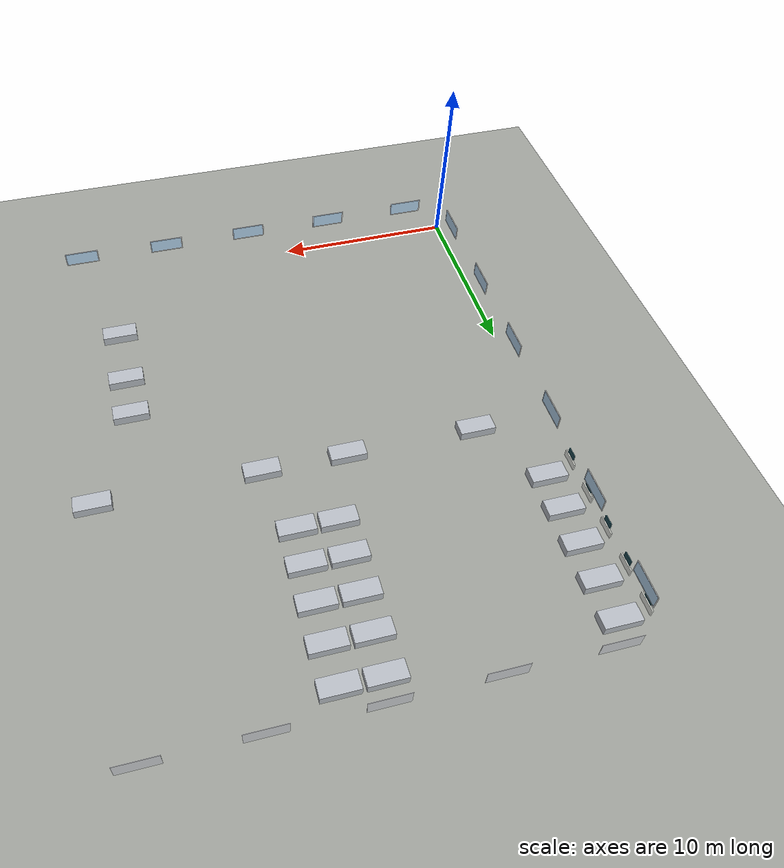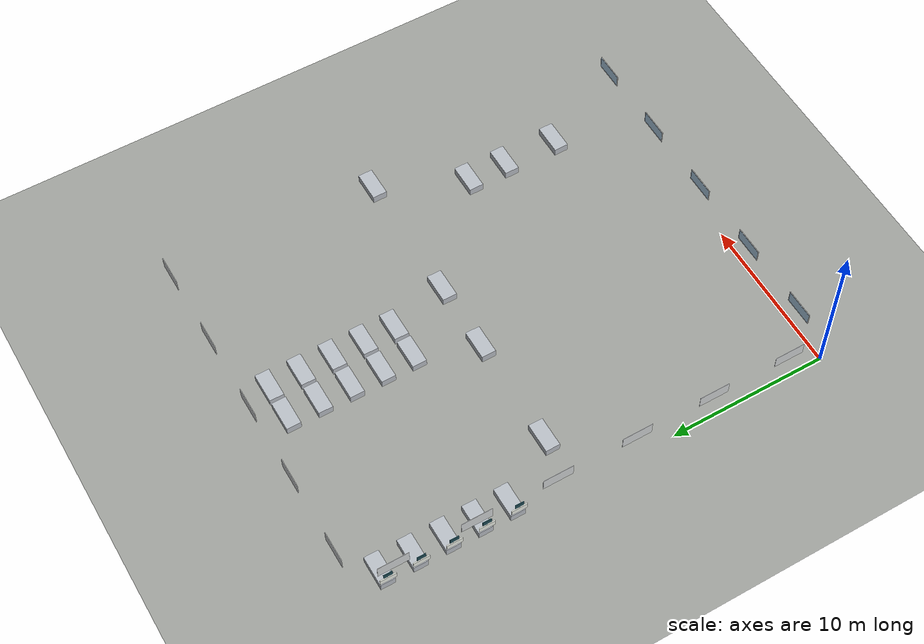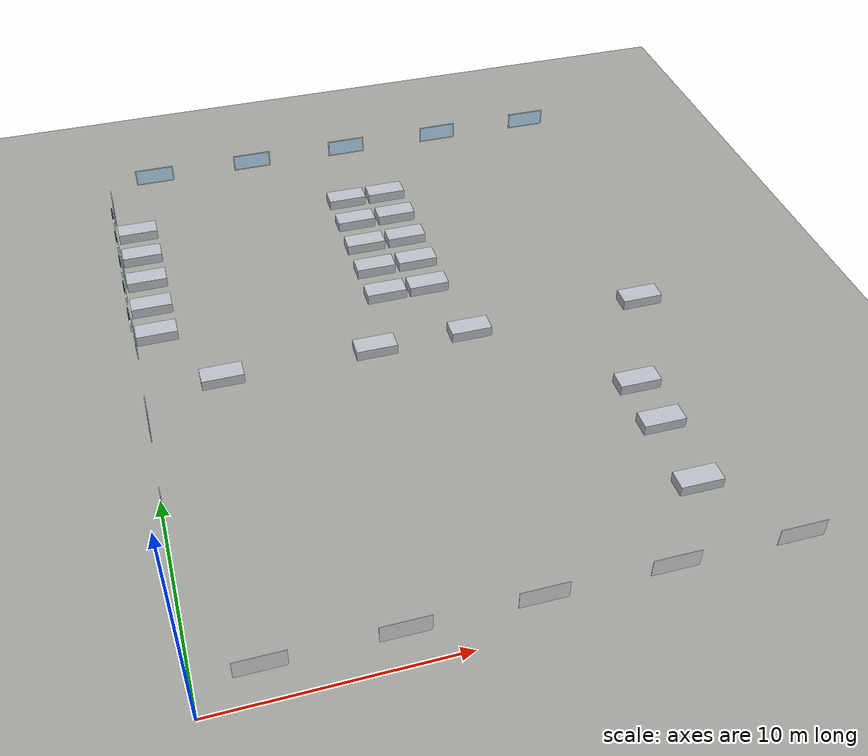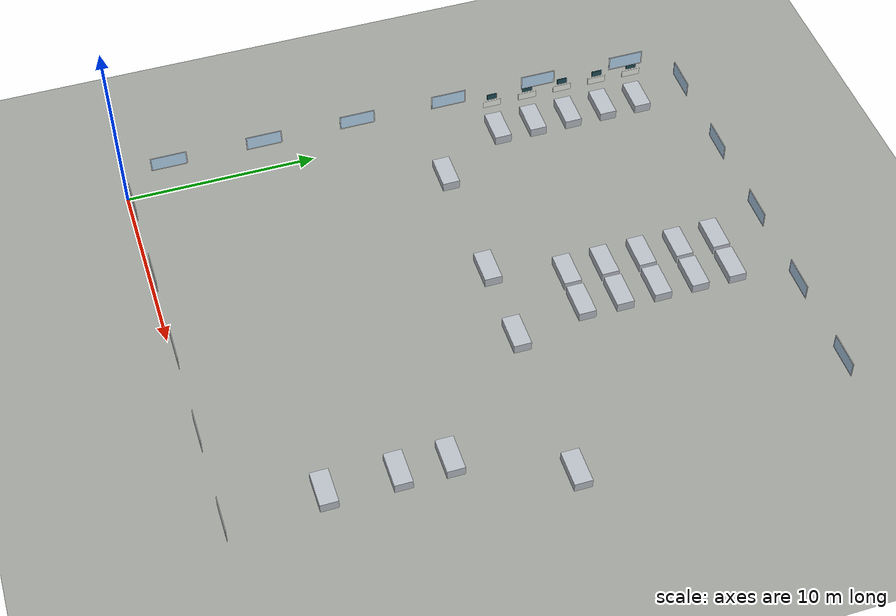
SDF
<sdf version="1.9">
 <world name="hospital">
  <model name="ground_plane">
   <static>true</static>
   <link name="link">
    <collision name="collision">
     <geometry><plane><normal>0 0 1</normal><size>200 200</size></plane></geometry>
    </collision>
    <visual name="visual">
     <pose>0 0 -0.03 0 0 0</pose>
     <cast_shadows>false</cast_shadows>
     <geometry><plane><normal>0 0 1</normal><size>200 200</size></plane></geometry>
     <material>
      <ambient>0.310 0.315 0.305 1.0</ambient>
      <diffuse>0.620 0.630 0.610 1.0</diffuse>
      <specular>0.14 0.14 0.14 1</specular>
      <emissive>0.000 0.000 0.000 1</emissive>
     </material>
    </visual>
   </link>
  </model>
  <model name="bed_0">
   <static>true</static>
   <pose>1.05 20.0 0.25 0 0 0</pose>
   <link name="link">
    <collision name="c"><geometry><box><size>1.9 0.8999999999999986 0.5</size></box></geometry></collision>
    <visual name="v">
     <visibility_flags>2</visibility_flags>
     <geometry><box><size>1.9 0.8999999999999986 0.5</size></box></geometry>
     <material>
      <ambient>0.360 0.370 0.385 1.0</ambient>
      <diffuse>0.720 0.740 0.770 1.0</diffuse>
      <specular>0.14 0.14 0.14 1</specular>
      <emissive>0.000 0.000 0.000 1</emissive>
     </material>
    </visual>
   </link>
  </model>
  <model name="bed_1">
   <static>true</static>
   <pose>11.95 20.0 0.25 0 0 0</pose>
   <link name="link">
    <collision name="c">
     <geometry><box><size>1.9000000000000004 0.8999999999999986 0.5</size></box></geometry>
    </collision>
    <visual name="v">
     <visibility_flags>2</visibility_flags>
     <geometry><box><size>1.9000000000000004 0.8999999999999986 0.5</size></box></geometry>
     <material>
      <ambient>0.360 0.370 0.385 1.0</ambient>
      <diffuse>0.720 0.740 0.770 1.0</diffuse>
      <specular>0.14 0.14 0.14 1</specular>
      <emissive>0.000 0.000 0.000 1</emissive>
     </material>
    </visual>
   </link>
  </model>
  <model name="bed_2">
   <static>true</static>
   <pose>1.05 24.0 0.25 0 0 0</pose>
   <link name="link">
    <collision name="c"><geometry><box><size>1.9 0.8999999999999986 0.5</size></box></geometry></collision>
    <visual name="v">
     <visibility_flags>2</visibility_flags>
     <geometry><box><size>1.9 0.8999999999999986 0.5</size></box></geometry>
     <material>
      <ambient>0.360 0.370 0.385 1.0</ambient>
      <diffuse>0.720 0.740 0.770 1.0</diffuse>
      <specular>0.14 0.14 0.14 1</specular>
      <emissive>0.000 0.000 0.000 1</emissive>
     </material>
    </visual>
   </link>
  </model>
  <model name="bed_3">
   <static>true</static>
   <pose>11.95 24.0 0.25 0 0 0</pose>
   <link name="link">
    <collision name="c">
     <geometry><box><size>1.9000000000000004 0.8999999999999986 0.5</size></box></geometry>
    </collision>
    <visual name="v">
     <visibility_flags>2</visibility_flags>
     <geometry><box><size>1.9000000000000004 0.8999999999999986 0.5</size></box></geometry>
     <material>
      <ambient>0.360 0.370 0.385 1.0</ambient>
      <diffuse>0.720 0.740 0.770 1.0</diffuse>
      <specular>0.14 0.14 0.14 1</specular>
      <emissive>0.000 0.000 0.000 1</emissive>
     </material>
    </visual>
   </link>
  </model>
  <model name="bed_4">
   <static>true</static>
   <pose>1.05 28.0 0.25 0 0 0</pose>
   <link name="link">
    <collision name="c"><geometry><box><size>1.9 0.8999999999999986 0.5</size></box></geometry></collision>
    <visual name="v">
     <visibility_flags>2</visibility_flags>
     <geometry><box><size>1.9 0.8999999999999986 0.5</size></box></geometry>
     <material>
      <ambient>0.360 0.370 0.385 1.0</ambient>
      <diffuse>0.720 0.740 0.770 1.0</diffuse>
      <specular>0.14 0.14 0.14 1</specular>
      <emissive>0.000 0.000 0.000 1</emissive>
     </material>
    </visual>
   </link>
  </model>
  <model name="bed_5">
   <static>true</static>
   <pose>11.95 28.0 0.25 0 0 0</pose>
   <link name="link">
    <collision name="c">
     <geometry><box><size>1.9000000000000004 0.8999999999999986 0.5</size></box></geometry>
    </collision>
    <visual name="v">
     <visibility_flags>2</visibility_flags>
     <geometry><box><size>1.9000000000000004 0.8999999999999986 0.5</size></box></geometry>
     <material>
      <ambient>0.360 0.370 0.385 1.0</ambient>
      <diffuse>0.720 0.740 0.770 1.0</diffuse>
      <specular>0.14 0.14 0.14 1</specular>
      <emissive>0.000 0.000 0.000 1</emissive>
     </material>
    </visual>
   </link>
  </model>
  <model name="bed_6">
   <static>true</static>
   <pose>14.05 20.0 0.25 0 0 0</pose>
   <link name="link">
    <collision name="c">
     <geometry><box><size>1.9000000000000004 0.8999999999999986 0.5</size></box></geometry>
    </collision>
    <visual name="v">
     <visibility_flags>2</visibility_flags>
     <geometry><box><size>1.9000000000000004 0.8999999999999986 0.5</size></box></geometry>
     <material>
      <ambient>0.360 0.370 0.385 1.0</ambient>
      <diffuse>0.720 0.740 0.770 1.0</diffuse>
      <specular>0.14 0.14 0.14 1</specular>
      <emissive>0.000 0.000 0.000 1</emissive>
     </material>
    </visual>
   </link>
  </model>
  <model name="bed_8">
   <static>true</static>
   <pose>14.05 24.0 0.25 0 0 0</pose>
   <link name="link">
    <collision name="c">
     <geometry><box><size>1.9000000000000004 0.8999999999999986 0.5</size></box></geometry>
    </collision>
    <visual name="v">
     <visibility_flags>2</visibility_flags>
     <geometry><box><size>1.9000000000000004 0.8999999999999986 0.5</size></box></geometry>
     <material>
      <ambient>0.360 0.370 0.385 1.0</ambient>
      <diffuse>0.720 0.740 0.770 1.0</diffuse>
      <specular>0.14 0.14 0.14 1</specular>
      <emissive>0.000 0.000 0.000 1</emissive>
     </material>
    </visual>
   </link>
  </model>
  <model name="bed_10">
   <static>true</static>
   <pose>14.05 28.0 0.25 0 0 0</pose>
   <link name="link">
    <collision name="c">
     <geometry><box><size>1.9000000000000004 0.8999999999999986 0.5</size></box></geometry>
    </collision>
    <visual name="v">
     <visibility_flags>2</visibility_flags>
     <geometry><box><size>1.9000000000000004 0.8999999999999986 0.5</size></box></geometry>
     <material>
      <ambient>0.360 0.370 0.385 1.0</ambient>
      <diffuse>0.720 0.740 0.770 1.0</diffuse>
      <specular>0.14 0.14 0.14 1</specular>
      <emissive>0.000 0.000 0.000 1</emissive>
     </material>
    </visual>
   </link>
  </model>
  <model name="bed_18">
   <static>true</static>
   <pose>21.05 5.0 0.25 0 0 0</pose>
   <link name="link">
    <collision name="c">
     <geometry><box><size>1.8999999999999986 0.9000000000000004 0.5</size></box></geometry>
    </collision>
    <visual name="v">
     <visibility_flags>2</visibility_flags>
     <geometry><box><size>1.8999999999999986 0.9000000000000004 0.5</size></box></geometry>
     <material>
      <ambient>0.360 0.370 0.385 1.0</ambient>
      <diffuse>0.720 0.740 0.770 1.0</diffuse>
      <specular>0.14 0.14 0.14 1</specular>
      <emissive>0.000 0.000 0.000 1</emissive>
     </material>
    </visual>
   </link>
  </model>
  <model name="bed_20">
   <static>true</static>
   <pose>21.05 8.5 0.25 0 0 0</pose>
   <link name="link">
    <collision name="c">
     <geometry><box><size>1.8999999999999986 0.8999999999999986 0.5</size></box></geometry>
    </collision>
    <visual name="v">
     <visibility_flags>2</visibility_flags>
     <geometry><box><size>1.8999999999999986 0.8999999999999986 0.5</size></box></geometry>
     <material>
      <ambient>0.360 0.370 0.385 1.0</ambient>
      <diffuse>0.720 0.740 0.770 1.0</diffuse>
      <specular>0.14 0.14 0.14 1</specular>
      <emissive>0.000 0.000 0.000 1</emissive>
     </material>
    </visual>
   </link>
  </model>
  <model name="bed_26">
   <static>true</static>
   <pose>15.0 16.3 0.25 0 0 0</pose>
   <link name="link">
    <collision name="c">
     <geometry><box><size>1.8999999999999986 0.9000000000000004 0.5</size></box></geometry>
    </collision>
    <visual name="v">
     <visibility_flags>2</visibility_flags>
     <geometry><box><size>1.8999999999999986 0.9000000000000004 0.5</size></box></geometry>
     <material>
      <ambient>0.360 0.370 0.385 1.0</ambient>
      <diffuse>0.720 0.740 0.770 1.0</diffuse>
      <specular>0.14 0.14 0.14 1</specular>
      <emissive>0.000 0.000 0.000 1</emissive>
     </material>
    </visual>
   </link>
  </model>
  <model name="bed_27">
   <static>true</static>
   <pose>23.5 16.3 0.25 0 0 0</pose>
   <link name="link">
    <collision name="c">
     <geometry><box><size>1.8999999999999986 0.9000000000000004 0.5</size></box></geometry>
    </collision>
    <visual name="v">
     <visibility_flags>2</visibility_flags>
     <geometry><box><size>1.8999999999999986 0.9000000000000004 0.5</size></box></geometry>
     <material>
      <ambient>0.360 0.370 0.385 1.0</ambient>
      <diffuse>0.720 0.740 0.770 1.0</diffuse>
      <specular>0.14 0.14 0.14 1</specular>
      <emissive>0.000 0.000 0.000 1</emissive>
     </material>
    </visual>
   </link>
  </model>
  <model name="bed_28">
   <static>true</static>
   <pose>3.5 16.3 0.25 0 0 0</pose>
   <link name="link">
    <collision name="c">
     <geometry><box><size>1.9000000000000004 0.9000000000000004 0.5</size></box></geometry>
    </collision>
    <visual name="v">
     <visibility_flags>2</visibility_flags>
     <geometry><box><size>1.9000000000000004 0.9000000000000004 0.5</size></box></geometry>
     <material>
      <ambient>0.360 0.370 0.385 1.0</ambient>
      <diffuse>0.720 0.740 0.770 1.0</diffuse>
      <specular>0.14 0.14 0.14 1</specular>
      <emissive>0.000 0.000 0.000 1</emissive>
     </material>
    </visual>
   </link>
  </model>
  <model name="bed_29">
   <static>true</static>
   <pose>10.5 16.3 0.25 0 0 0</pose>
   <link name="link">
    <collision name="c">
     <geometry><box><size>1.8999999999999986 0.9000000000000004 0.5</size></box></geometry>
    </collision>
    <visual name="v">
     <visibility_flags>2</visibility_flags>
     <geometry><box><size>1.8999999999999986 0.9000000000000004 0.5</size></box></geometry>
     <material>
      <ambient>0.360 0.370 0.385 1.0</ambient>
      <diffuse>0.720 0.740 0.770 1.0</diffuse>
      <specular>0.14 0.14 0.14 1</specular>
      <emissive>0.000 0.000 0.000 1</emissive>
     </material>
    </visual>
   </link>
  </model>
  <model name="bed_32">
   <static>true</static>
   <pose>1.05 22.0 0.25 0 0 0</pose>
   <link name="link">
    <collision name="c"><geometry><box><size>1.9 0.8999999999999986 0.5</size></box></geometry></collision>
    <visual name="v">
     <visibility_flags>2</visibility_flags>
     <geometry><box><size>1.9 0.8999999999999986 0.5</size></box></geometry>
     <material>
      <ambient>0.360 0.370 0.385 1.0</ambient>
      <diffuse>0.720 0.740 0.770 1.0</diffuse>
      <specular>0.14 0.14 0.14 1</specular>
      <emissive>0.000 0.000 0.000 1</emissive>
     </material>
    </visual>
   </link>
  </model>
  <model name="bed_33">
   <static>true</static>
   <pose>11.95 22.0 0.25 0 0 0</pose>
   <link name="link">
    <collision name="c">
     <geometry><box><size>1.9000000000000004 0.8999999999999986 0.5</size></box></geometry>
    </collision>
    <visual name="v">
     <visibility_flags>2</visibility_flags>
     <geometry><box><size>1.9000000000000004 0.8999999999999986 0.5</size></box></geometry>
     <material>
      <ambient>0.360 0.370 0.385 1.0</ambient>
      <diffuse>0.720 0.740 0.770 1.0</diffuse>
      <specular>0.14 0.14 0.14 1</specular>
      <emissive>0.000 0.000 0.000 1</emissive>
     </material>
    </visual>
   </link>
  </model>
  <model name="bed_34">
   <static>true</static>
   <pose>1.05 26.0 0.25 0 0 0</pose>
   <link name="link">
    <collision name="c"><geometry><box><size>1.9 0.8999999999999986 0.5</size></box></geometry></collision>
    <visual name="v">
     <visibility_flags>2</visibility_flags>
     <geometry><box><size>1.9 0.8999999999999986 0.5</size></box></geometry>
     <material>
      <ambient>0.360 0.370 0.385 1.0</ambient>
      <diffuse>0.720 0.740 0.770 1.0</diffuse>
      <specular>0.14 0.14 0.14 1</specular>
      <emissive>0.000 0.000 0.000 1</emissive>
     </material>
    </visual>
   </link>
  </model>
  <model name="bed_35">
   <static>true</static>
   <pose>11.95 26.0 0.25 0 0 0</pose>
   <link name="link">
    <collision name="c">
     <geometry><box><size>1.9000000000000004 0.8999999999999986 0.5</size></box></geometry>
    </collision>
    <visual name="v">
     <visibility_flags>2</visibility_flags>
     <geometry><box><size>1.9000000000000004 0.8999999999999986 0.5</size></box></geometry>
     <material>
      <ambient>0.360 0.370 0.385 1.0</ambient>
      <diffuse>0.720 0.740 0.770 1.0</diffuse>
      <specular>0.14 0.14 0.14 1</specular>
      <emissive>0.000 0.000 0.000 1</emissive>
     </material>
    </visual>
   </link>
  </model>
  <model name="bed_36">
   <static>true</static>
   <pose>14.05 22.0 0.25 0 0 0</pose>
   <link name="link">
    <collision name="c">
     <geometry><box><size>1.9000000000000004 0.8999999999999986 0.5</size></box></geometry>
    </collision>
    <visual name="v">
     <visibility_flags>2</visibility_flags>
     <geometry><box><size>1.9000000000000004 0.8999999999999986 0.5</size></box></geometry>
     <material>
      <ambient>0.360 0.370 0.385 1.0</ambient>
      <diffuse>0.720 0.740 0.770 1.0</diffuse>
      <specular>0.14 0.14 0.14 1</specular>
      <emissive>0.000 0.000 0.000 1</emissive>
     </material>
    </visual>
   </link>
  </model>
  <model name="bed_38">
   <static>true</static>
   <pose>14.05 26.0 0.25 0 0 0</pose>
   <link name="link">
    <collision name="c">
     <geometry><box><size>1.9000000000000004 0.8999999999999986 0.5</size></box></geometry>
    </collision>
    <visual name="v">
     <visibility_flags>2</visibility_flags>
     <geometry><box><size>1.9000000000000004 0.8999999999999986 0.5</size></box></geometry>
     <material>
      <ambient>0.360 0.370 0.385 1.0</ambient>
      <diffuse>0.720 0.740 0.770 1.0</diffuse>
      <specular>0.14 0.14 0.14 1</specular>
      <emissive>0.000 0.000 0.000 1</emissive>
     </material>
    </visual>
   </link>
  </model>
  <model name="bed_44">
   <static>true</static>
   <pose>21.05 11.0 0.25 0 0 0</pose>
   <link name="link">
    <collision name="c">
     <geometry><box><size>1.8999999999999986 0.8999999999999986 0.5</size></box></geometry>
    </collision>
    <visual name="v">
     <visibility_flags>2</visibility_flags>
     <geometry><box><size>1.8999999999999986 0.8999999999999986 0.5</size></box></geometry>
     <material>
      <ambient>0.360 0.370 0.385 1.0</ambient>
      <diffuse>0.720 0.740 0.770 1.0</diffuse>
      <specular>0.14 0.14 0.14 1</specular>
      <emissive>0.000 0.000 0.000 1</emissive>
     </material>
    </visual>
   </link>
  </model>
  <model name="bed_0_panel">
   <static>true</static>
   <pose>-0.010000000000000009 20.0 1.15 0 0 0</pose>
   <link name="link">
    <visual name="v">
     <cast_shadows>false</cast_shadows>
     <geometry><box><size>0.06 0.9899999999999985 0.4</size></box></geometry>
     <material>
      <ambient>0.460 0.465 0.450 1.0</ambient>
      <diffuse>0.920 0.930 0.900 1.0</diffuse>
      <specular>0.14 0.14 0.14 1</specular>
      <emissive>0.000 0.000 0.000 1</emissive>
     </material>
    </visual>
   </link>
  </model>
  <model name="bed_0_monitor">
   <static>true</static>
   <pose>-0.010000000000000009 20.0 1.615 0 0 0</pose>
   <link name="link">
    <visual name="v">
     <cast_shadows>false</cast_shadows>
     <geometry><box><size>0.05 0.5444999999999992 0.33</size></box></geometry>
     <material>
      <ambient>0.060 0.150 0.170 1.0</ambient>
      <diffuse>0.120 0.300 0.340 1.0</diffuse>
      <specular>0.14 0.14 0.14 1</specular>
      <emissive>0.042 0.105 0.119 1</emissive>
     </material>
    </visual>
   </link>
  </model>
  <model name="bed_2_panel">
   <static>true</static>
   <pose>-0.010000000000000009 24.0 1.15 0 0 0</pose>
   <link name="link">
    <visual name="v">
     <cast_shadows>false</cast_shadows>
     <geometry><box><size>0.06 0.9899999999999985 0.4</size></box></geometry>
     <material>
      <ambient>0.460 0.465 0.450 1.0</ambient>
      <diffuse>0.920 0.930 0.900 1.0</diffuse>
      <specular>0.14 0.14 0.14 1</specular>
      <emissive>0.000 0.000 0.000 1</emissive>
     </material>
    </visual>
   </link>
  </model>
  <model name="bed_2_monitor">
   <static>true</static>
   <pose>-0.010000000000000009 24.0 1.615 0 0 0</pose>
   <link name="link">
    <visual name="v">
     <cast_shadows>false</cast_shadows>
     <geometry><box><size>0.05 0.5444999999999992 0.33</size></box></geometry>
     <material>
      <ambient>0.060 0.150 0.170 1.0</ambient>
      <diffuse>0.120 0.300 0.340 1.0</diffuse>
      <specular>0.14 0.14 0.14 1</specular>
      <emissive>0.042 0.105 0.119 1</emissive>
     </material>
    </visual>
   </link>
  </model>
  <model name="bed_4_panel">
   <static>true</static>
   <pose>-0.010000000000000009 28.0 1.15 0 0 0</pose>
   <link name="link">
    <visual name="v">
     <cast_shadows>false</cast_shadows>
     <geometry><box><size>0.06 0.9899999999999985 0.4</size></box></geometry>
     <material>
      <ambient>0.460 0.465 0.450 1.0</ambient>
      <diffuse>0.920 0.930 0.900 1.0</diffuse>
      <specular>0.14 0.14 0.14 1</specular>
      <emissive>0.000 0.000 0.000 1</emissive>
     </material>
    </visual>
   </link>
  </model>
  <model name="bed_4_monitor">
   <static>true</static>
   <pose>-0.010000000000000009 28.0 1.615 0 0 0</pose>
   <link name="link">
    <visual name="v">
     <cast_shadows>false</cast_shadows>
     <geometry><box><size>0.05 0.5444999999999992 0.33</size></box></geometry>
     <material>
      <ambient>0.060 0.150 0.170 1.0</ambient>
      <diffuse>0.120 0.300 0.340 1.0</diffuse>
      <specular>0.14 0.14 0.14 1</specular>
      <emissive>0.042 0.105 0.119 1</emissive>
     </material>
    </visual>
   </link>
  </model>
  <model name="bed_32_panel">
   <static>true</static>
   <pose>-0.010000000000000009 22.0 1.15 0 0 0</pose>
   <link name="link">
    <visual name="v">
     <cast_shadows>false</cast_shadows>
     <geometry><box><size>0.06 0.9899999999999985 0.4</size></box></geometry>
     <material>
      <ambient>0.460 0.465 0.450 1.0</ambient>
      <diffuse>0.920 0.930 0.900 1.0</diffuse>
      <specular>0.14 0.14 0.14 1</specular>
      <emissive>0.000 0.000 0.000 1</emissive>
     </material>
    </visual>
   </link>
  </model>
  <model name="bed_32_monitor">
   <static>true</static>
   <pose>-0.010000000000000009 22.0 1.615 0 0 0</pose>
   <link name="link">
    <visual name="v">
     <cast_shadows>false</cast_shadows>
     <geometry><box><size>0.05 0.5444999999999992 0.33</size></box></geometry>
     <material>
      <ambient>0.060 0.150 0.170 1.0</ambient>
      <diffuse>0.120 0.300 0.340 1.0</diffuse>
      <specular>0.14 0.14 0.14 1</specular>
      <emissive>0.042 0.105 0.119 1</emissive>
     </material>
    </visual>
   </link>
  </model>
  <model name="bed_34_panel">
   <static>true</static>
   <pose>-0.010000000000000009 26.0 1.15 0 0 0</pose>
   <link name="link">
    <visual name="v">
     <cast_shadows>false</cast_shadows>
     <geometry><box><size>0.06 0.9899999999999985 0.4</size></box></geometry>
     <material>
      <ambient>0.460 0.465 0.450 1.0</ambient>
      <diffuse>0.920 0.930 0.900 1.0</diffuse>
      <specular>0.14 0.14 0.14 1</specular>
      <emissive>0.000 0.000 0.000 1</emissive>
     </material>
    </visual>
   </link>
  </model>
  <model name="bed_34_monitor">
   <static>true</static>
   <pose>-0.010000000000000009 26.0 1.615 0 0 0</pose>
   <link name="link">
    <visual name="v">
     <cast_shadows>false</cast_shadows>
     <geometry><box><size>0.05 0.5444999999999992 0.33</size></box></geometry>
     <material>
      <ambient>0.060 0.150 0.170 1.0</ambient>
      <diffuse>0.120 0.300 0.340 1.0</diffuse>
      <specular>0.14 0.14 0.14 1</specular>
      <emissive>0.042 0.105 0.119 1</emissive>
     </material>
    </visual>
   </link>
  </model>
  <model name="wall_0_winf0">
   <static>true</static>
   <pose>2.4124999999999988 0.112 2.225 0 0 0</pose>
   <link name="link">
    <visual name="v">
     <cast_shadows>false</cast_shadows>
     <geometry><box><size>1.9000000000000001 0.024 0.85</size></box></geometry>
     <material>
      <ambient>0.410 0.415 0.420 1.0</ambient>
      <diffuse>0.820 0.830 0.840 1.0</diffuse>
      <specular>0.14 0.14 0.14 1</specular>
      <emissive>0.000 0.000 0.000 1</emissive>
     </material>
    </visual>
   </link>
  </model>
  <model name="wall_0_win0">
   <static>true</static>
   <pose>2.4124999999999988 0.12 2.225 0 0 0</pose>
   <link name="link">
    <visual name="v">
     <cast_shadows>false</cast_shadows>
     <geometry><box><size>1.8 0.012 0.75</size></box></geometry>
     <material>
      <ambient>0.360 0.425 0.475 1.0</ambient>
      <diffuse>0.720 0.850 0.950 1.0</diffuse>
      <specular>0.14 0.14 0.14 1</specular>
      <emissive>0.468 0.552 0.617 1</emissive>
     </material>
    </visual>
   </link>
  </model>
  <model name="wall_0_winf1">
   <static>true</static>
   <pose>7.437499999999999 0.112 2.225 0 0 0</pose>
   <link name="link">
    <visual name="v">
     <cast_shadows>false</cast_shadows>
     <geometry><box><size>1.9000000000000001 0.024 0.85</size></box></geometry>
     <material>
      <ambient>0.410 0.415 0.420 1.0</ambient>
      <diffuse>0.820 0.830 0.840 1.0</diffuse>
      <specular>0.14 0.14 0.14 1</specular>
      <emissive>0.000 0.000 0.000 1</emissive>
     </material>
    </visual>
   </link>
  </model>
  <model name="wall_0_win1">
   <static>true</static>
   <pose>7.437499999999999 0.12 2.225 0 0 0</pose>
   <link name="link">
    <visual name="v">
     <cast_shadows>false</cast_shadows>
     <geometry><box><size>1.8 0.012 0.75</size></box></geometry>
     <material>
      <ambient>0.360 0.425 0.475 1.0</ambient>
      <diffuse>0.720 0.850 0.950 1.0</diffuse>
      <specular>0.14 0.14 0.14 1</specular>
      <emissive>0.468 0.552 0.617 1</emissive>
     </material>
    </visual>
   </link>
  </model>
  <model name="wall_0_winf2">
   <static>true</static>
   <pose>12.462499999999999 0.112 2.225 0 0 0</pose>
   <link name="link">
    <visual name="v">
     <cast_shadows>false</cast_shadows>
     <geometry><box><size>1.9000000000000001 0.024 0.85</size></box></geometry>
     <material>
      <ambient>0.410 0.415 0.420 1.0</ambient>
      <diffuse>0.820 0.830 0.840 1.0</diffuse>
      <specular>0.14 0.14 0.14 1</specular>
      <emissive>0.000 0.000 0.000 1</emissive>
     </material>
    </visual>
   </link>
  </model>
  <model name="wall_0_win2">
   <static>true</static>
   <pose>12.462499999999999 0.12 2.225 0 0 0</pose>
   <link name="link">
    <visual name="v">
     <cast_shadows>false</cast_shadows>
     <geometry><box><size>1.8 0.012 0.75</size></box></geometry>
     <material>
      <ambient>0.360 0.425 0.475 1.0</ambient>
      <diffuse>0.720 0.850 0.950 1.0</diffuse>
      <specular>0.14 0.14 0.14 1</specular>
      <emissive>0.468 0.552 0.617 1</emissive>
     </material>
    </visual>
   </link>
  </model>
  <model name="wall_0_winf3">
   <static>true</static>
   <pose>17.4875 0.112 2.225 0 0 0</pose>
   <link name="link">
    <visual name="v">
     <cast_shadows>false</cast_shadows>
     <geometry><box><size>1.9000000000000001 0.024 0.85</size></box></geometry>
     <material>
      <ambient>0.410 0.415 0.420 1.0</ambient>
      <diffuse>0.820 0.830 0.840 1.0</diffuse>
      <specular>0.14 0.14 0.14 1</specular>
      <emissive>0.000 0.000 0.000 1</emissive>
     </material>
    </visual>
   </link>
  </model>
  <model name="wall_0_win3">
   <static>true</static>
   <pose>17.4875 0.12 2.225 0 0 0</pose>
   <link name="link">
    <visual name="v">
     <cast_shadows>false</cast_shadows>
     <geometry><box><size>1.8 0.012 0.75</size></box></geometry>
     <material>
      <ambient>0.360 0.425 0.475 1.0</ambient>
      <diffuse>0.720 0.850 0.950 1.0</diffuse>
      <specular>0.14 0.14 0.14 1</specular>
      <emissive>0.468 0.552 0.617 1</emissive>
     </material>
    </visual>
   </link>
  </model>
  <model name="wall_0_winf4">
   <static>true</static>
   <pose>22.5125 0.112 2.225 0 0 0</pose>
   <link name="link">
    <visual name="v">
     <cast_shadows>false</cast_shadows>
     <geometry><box><size>1.9000000000000001 0.024 0.85</size></box></geometry>
     <material>
      <ambient>0.410 0.415 0.420 1.0</ambient>
      <diffuse>0.820 0.830 0.840 1.0</diffuse>
      <specular>0.14 0.14 0.14 1</specular>
      <emissive>0.000 0.000 0.000 1</emissive>
     </material>
    </visual>
   </link>
  </model>
  <model name="wall_0_win4">
   <static>true</static>
   <pose>22.5125 0.12 2.225 0 0 0</pose>
   <link name="link">
    <visual name="v">
     <cast_shadows>false</cast_shadows>
     <geometry><box><size>1.8 0.012 0.75</size></box></geometry>
     <material>
      <ambient>0.360 0.425 0.475 1.0</ambient>
      <diffuse>0.720 0.850 0.950 1.0</diffuse>
      <specular>0.14 0.14 0.14 1</specular>
      <emissive>0.468 0.552 0.617 1</emissive>
     </material>
    </visual>
   </link>
  </model>
  <model name="wall_1_winf0">
   <static>true</static>
   <pose>2.4124999999999988 29.888 2.225 0 0 0</pose>
   <link name="link">
    <visual name="v">
     <cast_shadows>false</cast_shadows>
     <geometry><box><size>1.9000000000000001 0.024 0.85</size></box></geometry>
     <material>
      <ambient>0.410 0.415 0.420 1.0</ambient>
      <diffuse>0.820 0.830 0.840 1.0</diffuse>
      <specular>0.14 0.14 0.14 1</specular>
      <emissive>0.000 0.000 0.000 1</emissive>
     </material>
    </visual>
   </link>
  </model>
  <model name="wall_1_win0">
   <static>true</static>
   <pose>2.4124999999999988 29.880000000000003 2.225 0 0 0</pose>
   <link name="link">
    <visual name="v">
     <cast_shadows>false</cast_shadows>
     <geometry><box><size>1.8 0.012 0.75</size></box></geometry>
     <material>
      <ambient>0.360 0.425 0.475 1.0</ambient>
      <diffuse>0.720 0.850 0.950 1.0</diffuse>
      <specular>0.14 0.14 0.14 1</specular>
      <emissive>0.468 0.552 0.617 1</emissive>
     </material>
    </visual>
   </link>
  </model>
  <model name="wall_1_winf1">
   <static>true</static>
   <pose>7.437499999999999 29.888 2.225 0 0 0</pose>
   <link name="link">
    <visual name="v">
     <cast_shadows>false</cast_shadows>
     <geometry><box><size>1.9000000000000001 0.024 0.85</size></box></geometry>
     <material>
      <ambient>0.410 0.415 0.420 1.0</ambient>
      <diffuse>0.820 0.830 0.840 1.0</diffuse>
      <specular>0.14 0.14 0.14 1</specular>
      <emissive>0.000 0.000 0.000 1</emissive>
     </material>
    </visual>
   </link>
  </model>
  <model name="wall_1_win1">
   <static>true</static>
   <pose>7.437499999999999 29.880000000000003 2.225 0 0 0</pose>
   <link name="link">
    <visual name="v">
     <cast_shadows>false</cast_shadows>
     <geometry><box><size>1.8 0.012 0.75</size></box></geometry>
     <material>
      <ambient>0.360 0.425 0.475 1.0</ambient>
      <diffuse>0.720 0.850 0.950 1.0</diffuse>
      <specular>0.14 0.14 0.14 1</specular>
      <emissive>0.468 0.552 0.617 1</emissive>
     </material>
    </visual>
   </link>
  </model>
  <model name="wall_1_winf2">
   <static>true</static>
   <pose>12.462499999999999 29.888 2.225 0 0 0</pose>
   <link name="link">
    <visual name="v">
     <cast_shadows>false</cast_shadows>
     <geometry><box><size>1.9000000000000001 0.024 0.85</size></box></geometry>
     <material>
      <ambient>0.410 0.415 0.420 1.0</ambient>
      <diffuse>0.820 0.830 0.840 1.0</diffuse>
      <specular>0.14 0.14 0.14 1</specular>
      <emissive>0.000 0.000 0.000 1</emissive>
     </material>
    </visual>
   </link>
  </model>
  <model name="wall_1_win2">
   <static>true</static>
   <pose>12.462499999999999 29.880000000000003 2.225 0 0 0</pose>
   <link name="link">
    <visual name="v">
     <cast_shadows>false</cast_shadows>
     <geometry><box><size>1.8 0.012 0.75</size></box></geometry>
     <material>
      <ambient>0.360 0.425 0.475 1.0</ambient>
      <diffuse>0.720 0.850 0.950 1.0</diffuse>
      <specular>0.14 0.14 0.14 1</specular>
      <emissive>0.468 0.552 0.617 1</emissive>
     </material>
    </visual>
   </link>
  </model>
  <model name="wall_1_winf3">
   <static>true</static>
   <pose>17.4875 29.888 2.225 0 0 0</pose>
   <link name="link">
    <visual name="v">
     <cast_shadows>false</cast_shadows>
     <geometry><box><size>1.9000000000000001 0.024 0.85</size></box></geometry>
     <material>
      <ambient>0.410 0.415 0.420 1.0</ambient>
      <diffuse>0.820 0.830 0.840 1.0</diffuse>
      <specular>0.14 0.14 0.14 1</specular>
      <emissive>0.000 0.000 0.000 1</emissive>
     </material>
    </visual>
   </link>
  </model>
  <model name="wall_1_win3">
   <static>true</static>
   <pose>17.4875 29.880000000000003 2.225 0 0 0</pose>
   <link name="link">
    <visual name="v">
     <cast_shadows>false</cast_shadows>
     <geometry><box><size>1.8 0.012 0.75</size></box></geometry>
     <material>
      <ambient>0.360 0.425 0.475 1.0</ambient>
      <diffuse>0.720 0.850 0.950 1.0</diffuse>
      <specular>0.14 0.14 0.14 1</specular>
      <emissive>0.468 0.552 0.617 1</emissive>
     </material>
    </visual>
   </link>
  </model>
  <model name="wall_1_winf4">
   <static>true</static>
   <pose>22.5125 29.888 2.225 0 0 0</pose>
   <link name="link">
    <visual name="v">
     <cast_shadows>false</cast_shadows>
     <geometry><box><size>1.9000000000000001 0.024 0.85</size></box></geometry>
     <material>
      <ambient>0.410 0.415 0.420 1.0</ambient>
      <diffuse>0.820 0.830 0.840 1.0</diffuse>
      <specular>0.14 0.14 0.14 1</specular>
      <emissive>0.000 0.000 0.000 1</emissive>
     </material>
    </visual>
   </link>
  </model>
  <model name="wall_1_win4">
   <static>true</static>
   <pose>22.5125 29.880000000000003 2.225 0 0 0</pose>
   <link name="link">
    <visual name="v">
     <cast_shadows>false</cast_shadows>
     <geometry><box><size>1.8 0.012 0.75</size></box></geometry>
     <material>
      <ambient>0.360 0.425 0.475 1.0</ambient>
      <diffuse>0.720 0.850 0.950 1.0</diffuse>
      <specular>0.14 0.14 0.14 1</specular>
      <emissive>0.468 0.552 0.617 1</emissive>
     </material>
    </visual>
   </link>
  </model>
  <model name="wall_2_winf0">
   <static>true</static>
   <pose>0.112 2.416666666666665 2.225 0 0 0</pose>
   <link name="link">
    <visual name="v">
     <cast_shadows>false</cast_shadows>
     <geometry><box><size>0.024 1.9000000000000001 0.85</size></box></geometry>
     <material>
      <ambient>0.410 0.415 0.420 1.0</ambient>
      <diffuse>0.820 0.830 0.840 1.0</diffuse>
      <specular>0.14 0.14 0.14 1</specular>
      <emissive>0.000 0.000 0.000 1</emissive>
     </material>
    </visual>
   </link>
  </model>
  <model name="wall_2_win0">
   <static>true</static>
   <pose>0.12 2.416666666666665 2.225 0 0 0</pose>
   <link name="link">
    <visual name="v">
     <cast_shadows>false</cast_shadows>
     <geometry><box><size>0.012 1.8 0.75</size></box></geometry>
     <material>
      <ambient>0.360 0.425 0.475 1.0</ambient>
      <diffuse>0.720 0.850 0.950 1.0</diffuse>
      <specular>0.14 0.14 0.14 1</specular>
      <emissive>0.468 0.552 0.617 1</emissive>
     </material>
    </visual>
   </link>
  </model>
  <model name="wall_2_winf1">
   <static>true</static>
   <pose>0.112 7.449999999999999 2.225 0 0 0</pose>
   <link name="link">
    <visual name="v">
     <cast_shadows>false</cast_shadows>
     <geometry><box><size>0.024 1.9000000000000001 0.85</size></box></geometry>
     <material>
      <ambient>0.410 0.415 0.420 1.0</ambient>
      <diffuse>0.820 0.830 0.840 1.0</diffuse>
      <specular>0.14 0.14 0.14 1</specular>
      <emissive>0.000 0.000 0.000 1</emissive>
     </material>
    </visual>
   </link>
  </model>
  <model name="wall_2_win1">
   <static>true</static>
   <pose>0.12 7.449999999999999 2.225 0 0 0</pose>
   <link name="link">
    <visual name="v">
     <cast_shadows>false</cast_shadows>
     <geometry><box><size>0.012 1.8 0.75</size></box></geometry>
     <material>
      <ambient>0.360 0.425 0.475 1.0</ambient>
      <diffuse>0.720 0.850 0.950 1.0</diffuse>
      <specular>0.14 0.14 0.14 1</specular>
      <emissive>0.468 0.552 0.617 1</emissive>
     </material>
    </visual>
   </link>
  </model>
  <model name="wall_2_winf2">
   <static>true</static>
   <pose>0.112 12.483333333333334 2.225 0 0 0</pose>
   <link name="link">
    <visual name="v">
     <cast_shadows>false</cast_shadows>
     <geometry><box><size>0.024 1.9000000000000001 0.85</size></box></geometry>
     <material>
      <ambient>0.410 0.415 0.420 1.0</ambient>
      <diffuse>0.820 0.830 0.840 1.0</diffuse>
      <specular>0.14 0.14 0.14 1</specular>
      <emissive>0.000 0.000 0.000 1</emissive>
     </material>
    </visual>
   </link>
  </model>
  <model name="wall_2_win2">
   <static>true</static>
   <pose>0.12 12.483333333333334 2.225 0 0 0</pose>
   <link name="link">
    <visual name="v">
     <cast_shadows>false</cast_shadows>
     <geometry><box><size>0.012 1.8 0.75</size></box></geometry>
     <material>
      <ambient>0.360 0.425 0.475 1.0</ambient>
      <diffuse>0.720 0.850 0.950 1.0</diffuse>
      <specular>0.14 0.14 0.14 1</specular>
      <emissive>0.468 0.552 0.617 1</emissive>
     </material>
    </visual>
   </link>
  </model>
  <model name="wall_2_winf3">
   <static>true</static>
   <pose>0.112 17.51666666666667 2.225 0 0 0</pose>
   <link name="link">
    <visual name="v">
     <cast_shadows>false</cast_shadows>
     <geometry><box><size>0.024 1.9000000000000001 0.85</size></box></geometry>
     <material>
      <ambient>0.410 0.415 0.420 1.0</ambient>
      <diffuse>0.820 0.830 0.840 1.0</diffuse>
      <specular>0.14 0.14 0.14 1</specular>
      <emissive>0.000 0.000 0.000 1</emissive>
     </material>
    </visual>
   </link>
  </model>
  <model name="wall_2_win3">
   <static>true</static>
   <pose>0.12 17.51666666666667 2.225 0 0 0</pose>
   <link name="link">
    <visual name="v">
     <cast_shadows>false</cast_shadows>
     <geometry><box><size>0.012 1.8 0.75</size></box></geometry>
     <material>
      <ambient>0.360 0.425 0.475 1.0</ambient>
      <diffuse>0.720 0.850 0.950 1.0</diffuse>
      <specular>0.14 0.14 0.14 1</specular>
      <emissive>0.468 0.552 0.617 1</emissive>
     </material>
    </visual>
   </link>
  </model>
  <model name="wall_2_winf4">
   <static>true</static>
   <pose>0.112 22.55 2.225 0 0 0</pose>
   <link name="link">
    <visual name="v">
     <cast_shadows>false</cast_shadows>
     <geometry><box><size>0.024 1.9000000000000001 0.85</size></box></geometry>
     <material>
      <ambient>0.410 0.415 0.420 1.0</ambient>
      <diffuse>0.820 0.830 0.840 1.0</diffuse>
      <specular>0.14 0.14 0.14 1</specular>
      <emissive>0.000 0.000 0.000 1</emissive>
     </material>
    </visual>
   </link>
  </model>
  <model name="wall_2_win4">
   <static>true</static>
   <pose>0.12 22.55 2.225 0 0 0</pose>
   <link name="link">
    <visual name="v">
     <cast_shadows>false</cast_shadows>
     <geometry><box><size>0.012 1.8 0.75</size></box></geometry>
     <material>
      <ambient>0.360 0.425 0.475 1.0</ambient>
      <diffuse>0.720 0.850 0.950 1.0</diffuse>
      <specular>0.14 0.14 0.14 1</specular>
      <emissive>0.468 0.552 0.617 1</emissive>
     </material>
    </visual>
   </link>
  </model>
  <model name="wall_2_winf5">
   <static>true</static>
   <pose>0.112 27.583333333333332 2.225 0 0 0</pose>
   <link name="link">
    <visual name="v">
     <cast_shadows>false</cast_shadows>
     <geometry><box><size>0.024 1.9000000000000001 0.85</size></box></geometry>
     <material>
      <ambient>0.410 0.415 0.420 1.0</ambient>
      <diffuse>0.820 0.830 0.840 1.0</diffuse>
      <specular>0.14 0.14 0.14 1</specular>
      <emissive>0.000 0.000 0.000 1</emissive>
     </material>
    </visual>
   </link>
  </model>
  <model name="wall_2_win5">
   <static>true</static>
   <pose>0.12 27.583333333333332 2.225 0 0 0</pose>
   <link name="link">
    <visual name="v">
     <cast_shadows>false</cast_shadows>
     <geometry><box><size>0.012 1.8 0.75</size></box></geometry>
     <material>
      <ambient>0.360 0.425 0.475 1.0</ambient>
      <diffuse>0.720 0.850 0.950 1.0</diffuse>
      <specular>0.14 0.14 0.14 1</specular>
      <emissive>0.468 0.552 0.617 1</emissive>
     </material>
    </visual>
   </link>
  </model>
 </world>
</sdf>
